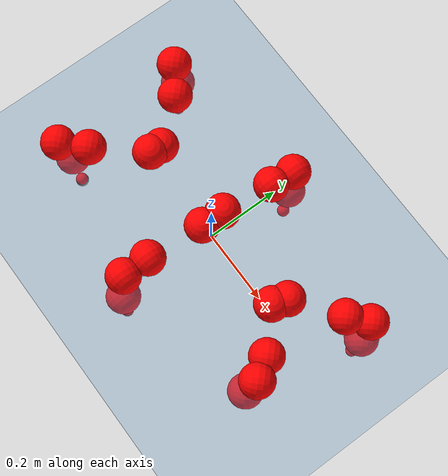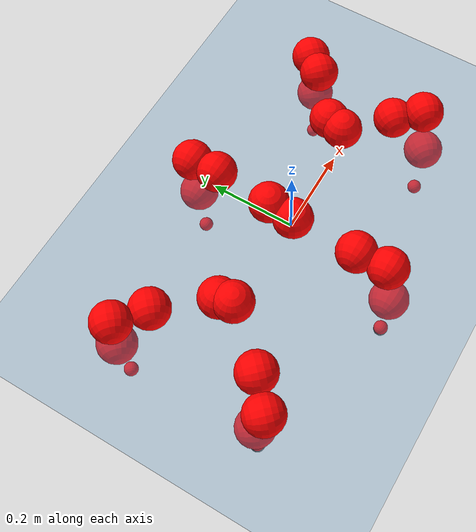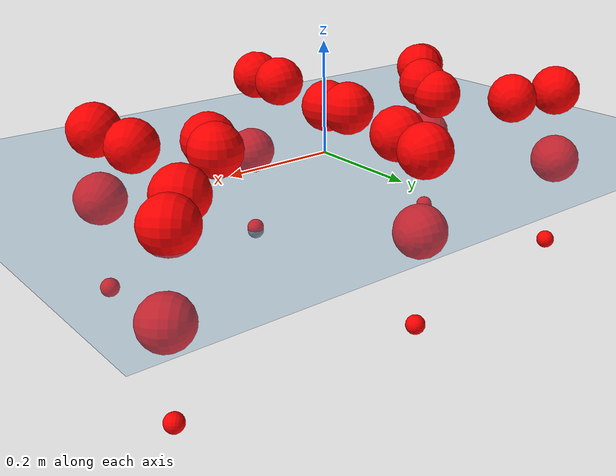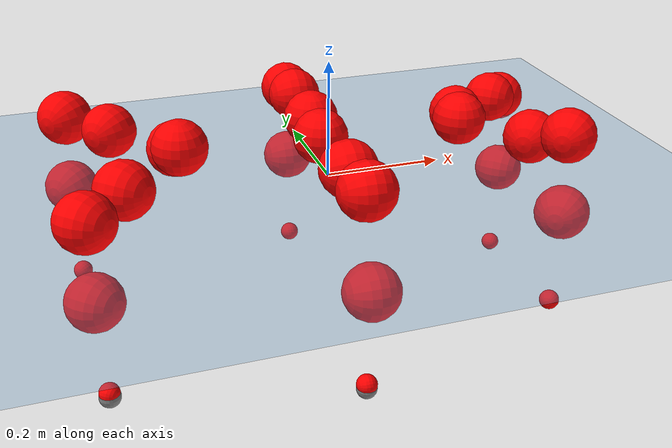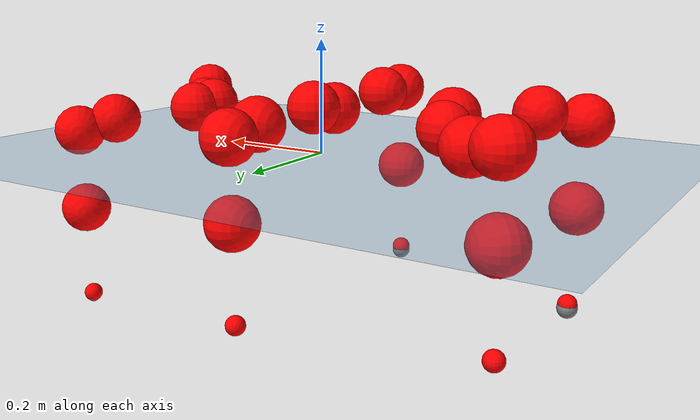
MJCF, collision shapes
<mujoco model="Golem">
  <compiler angle="radian" assetdir="assets" balanceinertia="true" inertiafromgeom="false"/>

  <option timestep="0.005" density="1.2" viscosity="2e-05"/>

  <size nkey="1"/>

  <visual>
    <quality shadowsize="8192"/>
    <map shadowclip="0.5"/>
  </visual>

  <default>
    <default class="/">
      <joint armature="0.01" damping="0.01" frictionloss="0.01"/>
      <geom contype="0" conaffinity="0" group="1" solref="-1000 -80"/>
      <site size="0.01 0.005 0.005" group="5"/>
      <general forcelimited="true" biastype="affine" gainprm="25" biasprm="0 -25 -0.5"/>
      <default class="visual">
        <geom type="mesh" group="2"/>
      </default>
      <default class="collision">
        <geom group="3"/>
      </default>
      <default class="foot">
        <geom size="0.01 0 0" condim="6" group="4" priority="1" solimp="0.015 1 0.01"/>
      </default>
      <default class="reward_collision_sphere">
        <geom group="5" rgba="1 0 0 1"/>
      </default>
    </default>
  </default>

  <asset>
    <texture type="skybox" colorspace="auto" name="//unnamed_texture_0" builtin="gradient" rgb1="0.95 0.95 0.95" rgb2="0.95 0.95 0.95" width="100" height="600"/>
    <texture type="2d" colorspace="auto" name="texplane" builtin="checker" rgb1="0.345 0.575 0.748" rgb2="0.345 0.575 0.748" markrgb="1 1 1" width="512" height="512"/>
    <material name="MatPlane" class="/" texture="texplane" texuniform="true" texrepeat="2 2" specular="0.9"/>
    <mesh name="body" class="/" file="body.stl" scale="0.001 0.001 0.001"/>
    <mesh name="coxa" class="/" file="coxa.stl" scale="0.001 0.001 0.001"/>
    <mesh name="femur" class="/" file="femur.stl" scale="0.001 0.001 0.001"/>
    <mesh name="tibia" class="/" file="tibia.stl" scale="0.001 0.001 0.001"/>
    <mesh name="tarsus" class="/" file="tarsus.stl" scale="0.001 0.001 0.001"/>
  </asset>

  <worldbody>
    <geom name="floor" class="/" size="100 100 0.125" type="plane" group="0" material="MatPlane"/>
    <light name="toplight_shadow" class="/" pos="0 0 5" dir="0.0990148 0.0990148 -0.990148" type="directional" ambient="0.04 0.04 0.04" diffuse="0.55 0.55 0.55" specular="0.12 0.12 0.12"/>
    <light name="toplight_fill" class="/" pos="0 0 5" dir="0.0990148 0.0990148 -0.990148" type="directional" castshadow="false" ambient="0.04 0.04 0.04" diffuse="0.3 0.3 0.3" specular="0.08 0.08 0.08"/>
    <body name="trunk" pos="0.000422134 0.00699361 0.013501" quat="0.99997 -0.00738154 0.00236214 -0.000292546">
      <inertial pos="-0.0105502 0.0105534 -0.0137797" quat="0.998881 -0.0315491 0.00324622 -0.035094" mass="7.53917" diaginertia="0.126666 0.00162668 0.0210148"/>
      <joint name="//unnamed_joint_0" type="free"/>
      <geom name="//unnamed_geom_1" class="/" pos="0 0 0.0745624" quat="1 0 0 0" type="mesh" rgba="0.9 0.9 0.9 1" mesh="body"/>
      <site name="imu" class="/" pos="0.249763 -0.0794704 0.0223177" size="0.0113878"/>
      <camera name="track" class="/" pos="0 -1.31782 0" quat="0.707107 0.707107 0 0" mode="trackcom"/>
      <camera name="ego_camera" class="/" pos="0.207012 0 0.116504" quat="-0.5 -0.5 0.5 0.5"/>
      <body name="coxa_RR" pos="-0.28283 -0.0493493 0.0723979" quat="0.381464 0.00478543 0.00826318 -0.924334">
        <inertial pos="-0.0146733 -0.00921711 0.012397" quat="0.998517 -0.0412175 -0.02872 -0.0209749" mass="0.260135" diaginertia="0.126114 0.00108347 0.0179239"/>
        <joint name="coxa_joint_RR" class="/" pos="0 0 0" axis="0.00847546 -0.0506147 -0.998682" range="-3.35477 3.32196" armature="0.00826436" damping="0.0481325" frictionloss="0.0056297"/>
        <geom name="//unnamed_geom_2" class="/" type="mesh" rgba="0.2 0.2 0.2 1" mesh="coxa"/>
        <geom name="//unnamed_geom_3" class="reward_collision_sphere" size="0.0455512" pos="-0.047772 0 0"/>
        <body name="femur_RR" pos="0.107328 0.0105224 -0.00207038" quat="0.498119 -0.494535 0.500658 0.506611">
          <inertial pos="-0.000979246 -0.0185991 -0.0120897" quat="0.997792 0.049995 -0.0242932 0.0363531" mass="0.33354" diaginertia="0.103836 0.00171148 0.0264405"/>
          <joint name="femur_joint_RR" class="/" pos="0 0 0" axis="-0.0335779 -0.00425328 -0.999427" range="-3.32828 3.32896" armature="0.00297326" damping="0" frictionloss="0.0107445"/>
          <geom name="//unnamed_geom_4" class="/" type="mesh" rgba="0.9 0.9 0.9 1" mesh="femur"/>
          <geom name="//unnamed_geom_5" class="reward_collision_sphere" size="0.0455512"/>
          <body name="tibia_RR" pos="0.0131845 -0.0816373 -0.00600403" quat="0.000110239 0.999997 -0.00223871 8.30897e-05">
            <inertial pos="0.00254123 -0.0175649 -0.00735638" quat="0.999993 -0.000696308 0.00323855 0.00143929" mass="0.367046" diaginertia="0.127892 0.00153362 0.0270521"/>
            <joint name="tibia_joint_RR" class="/" pos="0 0 0" axis="0.0499628 -0.0696292 0.996321" stiffness="0.0706985" range="-3.49257 2.98378" armature="0.0190948" damping="0.0637184" frictionloss="0.00029622"/>
            <geom name="//unnamed_geom_6" class="/" type="mesh" rgba="0.2 0.2 0.2 1" mesh="tibia"/>
            <geom name="//unnamed_geom_7" class="reward_collision_sphere" size="0.0455512"/>
            <body name="tarsus_RR" pos="0.146612 -0.0148601 0.0171662" quat="0.999982 0.000246593 0.00147743 -0.00587103">
              <inertial pos="0.0845222 0.00758067 -0.014198" quat="0.479507 0.529045 0.4619 0.526149" mass="0.353148" diaginertia="0.11284 0.00166737 0.0196542"/>
              <joint name="tarsus_joint_RR" class="/" pos="0 0 0" axis="0.0158079 -0.0655315 0.997725" range="-2.89214 3.25096" armature="0.0173452" damping="0" frictionloss="0.0077742"/>
              <geom name="//unnamed_geom_8" class="/" type="mesh" rgba="0.9 0.9 0.9 1" mesh="tarsus"/>
              <geom name="foot_1" class="foot" size="0.0180862" pos="0.178349 0 0" quat="0 -0.707107 0 0.707107"/>
              <geom name="//unnamed_geom_10" class="reward_collision_sphere" size="0.0455512"/>
              <geom name="//unnamed_geom_11" class="reward_collision_sphere" size="0.0170817" pos="0.171183 0 0"/>
              <site name="foot_1" class="foot" pos="0.178349 0 0" quat="0 -0.707107 0 0.707107" size="0.0113878"/>
            </body>
          </body>
        </body>
      </body>
      <body name="coxa_RM" pos="-0.0191245 -0.0706526 0.0661097" quat="0.705731 -0.00226819 0.0027176 -0.708472">
        <inertial pos="-0.00518377 -0.00202231 0.016058" quat="0.995591 -0.0390835 0.0727054 -0.0445551" mass="0.258458" diaginertia="0.0733561 0.000736921 0.0133178"/>
        <joint name="coxa_joint_RM" class="/" pos="0 0 0" axis="-0.0767188 -0.0488613 -0.995855" stiffness="0.0575929" range="-3.11276 3.38034" armature="0.0163846" damping="0" frictionloss="0.00362125"/>
        <geom name="//unnamed_geom_12" class="/" type="mesh" rgba="0.2 0.2 0.2 1" mesh="coxa"/>
        <geom name="//unnamed_geom_13" class="reward_collision_sphere" size="0.0455512" pos="-0.047772 0 0"/>
        <body name="femur_RM" pos="0.109493 -0.00772797 0.011251" quat="0.499048 -0.500359 0.501841 0.498745">
          <inertial pos="-0.00383976 -0.0145604 -0.00313873" quat="0.999396 0.0208652 -0.0195242 -0.0197556" mass="0.242475" diaginertia="0.119241 0.00126472 0.0238142"/>
          <joint name="femur_joint_RM" class="/" pos="0 0 0" axis="-0.016046 0.00981695 -0.999823" stiffness="0.0744956" range="-3.45088 2.90473" armature="0.0036648" damping="0" frictionloss="0.00182783"/>
          <geom name="//unnamed_geom_14" class="/" type="mesh" rgba="0.9 0.9 0.9 1" mesh="femur"/>
          <geom name="//unnamed_geom_15" class="reward_collision_sphere" size="0.0455512"/>
          <body name="tibia_RM" pos="0.00132066 -0.0736787 0.00159968" quat="-0.000621855 0.999996 -0.00275931 0.000788871">
            <inertial pos="-0.00514142 0.00270738 -0.0150001" quat="0.999292 0.0359474 0.00244902 0.0108207" mass="0.228976" diaginertia="0.106991 0.00127696 0.0244435"/>
            <joint name="tibia_joint_RM" class="/" pos="0 0 0" axis="-0.0650047 0.0583258 0.996179" range="-3.35274 2.85942" armature="0.021499" damping="0" frictionloss="0.00142774"/>
            <geom name="//unnamed_geom_16" class="/" type="mesh" rgba="0.2 0.2 0.2 1" mesh="tibia"/>
            <geom name="//unnamed_geom_17" class="reward_collision_sphere" size="0.0455512"/>
            <body name="tarsus_RM" pos="0.159525 0.0159988 -0.00785673" quat="0.999974 0.00453319 -0.00159183 -0.00530694">
              <inertial pos="0.0929541 0.00616224 -0.00359551" quat="0.488146 0.50284 0.495214 0.513448" mass="0.187978" diaginertia="0.0850623 0.000976975 0.0172716"/>
              <joint name="tarsus_joint_RM" class="/" pos="0 0 0" axis="-0.0521851 0.00164911 0.998636" range="-3.3407 3.29299" armature="0.0177775" damping="0" frictionloss="0.00679074"/>
              <geom name="//unnamed_geom_18" class="/" type="mesh" rgba="0.9 0.9 0.9 1" mesh="tarsus"/>
              <geom name="foot_2" class="foot" size="0.0169522" pos="0.178349 0 0" quat="0 -0.707107 0 0.707107"/>
              <geom name="//unnamed_geom_20" class="reward_collision_sphere" size="0.0455512"/>
              <geom name="//unnamed_geom_21" class="reward_collision_sphere" size="0.0170817" pos="0.171183 0 0"/>
              <site name="foot_2" class="foot" pos="0.178349 0 0" quat="0 -0.707107 0 0.707107" size="0.0113878"/>
            </body>
          </body>
        </body>
      </body>
      <body name="coxa_RF" pos="0.272801 -0.0370108 0.0594418" quat="0.923865 -0.000230982 2.28944e-05 -0.382719">
        <inertial pos="0.0178506 -0.00545234 0.0149177" quat="0.99782 -0.014518 -0.0634222 0.0110554" mass="0.2738" diaginertia="0.0797369 0.000861143 0.0175133"/>
        <joint name="coxa_joint_RF" class="/" pos="0 0 0" axis="-0.0044786 -0.0398142 -0.999197" stiffness="0.0763094" range="-3.24443 3.40537" armature="0.0150769" damping="0" frictionloss="0.00173831"/>
        <geom name="//unnamed_geom_22" class="/" type="mesh" rgba="0.2 0.2 0.2 1" mesh="coxa"/>
        <geom name="//unnamed_geom_23" class="reward_collision_sphere" size="0.0455512" pos="-0.047772 0 0"/>
        <body name="femur_RF" pos="0.0772327 0.0063233 -0.012468" quat="0.493954 -0.503307 0.503479 0.499198">
          <inertial pos="-0.00666857 -0.00400829 0.0081982" quat="0.998124 -0.00690513 -0.0552378 0.0254752" mass="0.280989" diaginertia="0.11376 0.00155914 0.0248211"/>
          <joint name="femur_joint_RF" class="/" pos="0 0 0" axis="0.0483698 -0.00668385 -0.998807" range="-3.36475 3.09272" armature="0.00730785" damping="0.0270316" frictionloss="0.00785845"/>
          <geom name="//unnamed_geom_24" class="/" type="mesh" rgba="0.9 0.9 0.9 1" mesh="femur"/>
          <geom name="//unnamed_geom_25" class="reward_collision_sphere" size="0.0455512"/>
          <body name="tibia_RF" pos="-0.0197039 -0.0653154 -0.015917" quat="-0.000307897 0.999987 -0.00383239 -0.0033924">
            <inertial pos="0.00155219 0.0172683 0.0154323" quat="0.996477 -0.0224606 0.0368273 -0.0719276" mass="0.316509" diaginertia="0.142925 0.001691 0.0205132"/>
            <joint name="tibia_joint_RF" class="/" pos="0 0 0" axis="0.0631693 0.054559 0.99651" stiffness="0.0951842" range="-2.90598 3.04032" armature="0.00855481" damping="0.0437893" frictionloss="0.0187096"/>
            <geom name="//unnamed_geom_26" class="/" type="mesh" rgba="0.2 0.2 0.2 1" mesh="tibia"/>
            <geom name="//unnamed_geom_27" class="reward_collision_sphere" size="0.0455512"/>
            <body name="tarsus_RF" pos="0.129037 0.00931901 0.0183132" quat="1 0.000153938 0.000260717 3.05472e-05">
              <inertial pos="0.0874433 -0.00707371 0.00580805" quat="0.512475 0.49793 0.460241 0.526891" mass="0.31665" diaginertia="0.133462 0.00170014 0.0224464"/>
              <joint name="tarsus_joint_RF" class="/" pos="0 0 0" axis="0.0868354 -0.0365704 0.995551" range="-3.00616 3.29505" armature="0.0173618" damping="0.00885712" frictionloss="0.00426457"/>
              <geom name="//unnamed_geom_28" class="/" type="mesh" rgba="0.9 0.9 0.9 1" mesh="tarsus"/>
              <geom name="foot_3" class="foot" size="0.00646253" pos="0.178349 0 0" quat="0 -0.707107 0 0.707107"/>
              <geom name="//unnamed_geom_30" class="reward_collision_sphere" size="0.0455512"/>
              <geom name="//unnamed_geom_31" class="reward_collision_sphere" size="0.0170817" pos="0.171183 0 0"/>
              <site name="foot_3" class="foot" pos="0.178349 0 0" quat="0 -0.707107 0 0.707107" size="0.0113878"/>
            </body>
          </body>
        </body>
      </body>
      <body name="coxa_LR" pos="-0.285009 0.0531807 0.0568199" quat="0.384485 -0.00731378 0.00310709 0.923097">
        <inertial pos="0.0117102 -0.0155233 0.0162459" quat="0.999276 -0.0357042 -0.00415819 0.0124732" mass="0.284674" diaginertia="0.103776 0.00132215 0.0194729"/>
        <joint name="coxa_joint_LR" class="/" pos="0 0 0" axis="-0.0107227 -0.0737693 -0.997218" stiffness="0.00449123" range="-2.91521 2.79734" armature="0.0131159" damping="0" frictionloss="0.00320376"/>
        <geom name="//unnamed_geom_32" class="/" type="mesh" rgba="0.2 0.2 0.2 1" mesh="coxa"/>
        <geom name="//unnamed_geom_33" class="reward_collision_sphere" size="0.0455512" pos="-0.047772 0 0"/>
        <body name="femur_LR" pos="0.0940138 -0.0121583 0.00159027" quat="0.497589 -0.498922 0.499076 0.504386">
          <inertial pos="-0.00582209 -0.0142733 -0.00938798" quat="0.995985 -0.0449784 0.0384633 -0.0671682" mass="0.37162" diaginertia="0.0919638 0.00152801 0.0276749"/>
          <joint name="femur_joint_LR" class="/" pos="0 0 0" axis="-0.093302 0.0341637 0.995052" stiffness="0.00257772" range="-2.90894 2.93329" armature="0.00124674" damping="0" frictionloss="0.00918161"/>
          <geom name="//unnamed_geom_34" class="/" type="mesh" rgba="0.9 0.9 0.9 1" mesh="femur"/>
          <geom name="//unnamed_geom_35" class="reward_collision_sphere" size="0.0455512"/>
          <body name="tibia_LR" pos="-0.0158054 -0.0797708 0.0147239" quat="-7.32783e-06 0.999988 -0.00466321 0.00157656">
            <inertial pos="0.0119356 -0.00976383 -0.0152966" quat="0.997526 -0.0561532 0.0422119 -0.00255863" mass="0.209725" diaginertia="0.0834297 0.000960064 0.0218827"/>
            <joint name="tibia_joint_LR" class="/" pos="0 0 0" axis="-0.00858223 0.0236399 -0.999684" range="-3.49869 2.84979" armature="0.0208798" damping="0" frictionloss="0.0115233"/>
            <geom name="//unnamed_geom_36" class="/" type="mesh" rgba="0.2 0.2 0.2 1" mesh="tibia"/>
            <geom name="//unnamed_geom_37" class="reward_collision_sphere" size="0.0455512"/>
            <body name="tarsus_LR" pos="0.133106 0.0121368 0.00650134" quat="1 -1.18977e-05 -4.3879e-05 4.3374e-05">
              <inertial pos="0.0999463 0.0165116 -0.00746857" quat="0.501301 0.495965 0.498066 0.504625" mass="0.402264" diaginertia="0.115643 0.00105408 0.0203876"/>
              <joint name="tarsus_joint_LR" class="/" pos="0 0 0" axis="-0.00125677 0.0057396 -0.999983" range="-2.98542 2.87819" armature="0.0108786" damping="0.057918" frictionloss="0.0186988"/>
              <geom name="//unnamed_geom_38" class="/" type="mesh" rgba="0.9 0.9 0.9 1" mesh="tarsus"/>
              <geom name="foot_4" class="foot" size="0.00589488" pos="0.178349 0 0" quat="0.707107 0 -0.707107 0"/>
              <geom name="//unnamed_geom_40" class="reward_collision_sphere" size="0.0455512"/>
              <geom name="//unnamed_geom_41" class="reward_collision_sphere" size="0.0170817" pos="0.171183 0 0"/>
              <site name="foot_4" class="foot" pos="0.178349 0 0" quat="0.707107 0 -0.707107 0" size="0.0113878"/>
            </body>
          </body>
        </body>
      </body>
      <body name="coxa_LM" pos="-0.0156135 0.0861365 0.0753895" quat="0.70879 -0.00348418 -0.000497758 0.705411">
        <inertial pos="0.000426689 -0.00444673 0.0176927" quat="0.999331 -0.0233705 -0.0200172 -0.0197878" mass="0.297368" diaginertia="0.0782374 0.00115033 0.0196635"/>
        <joint name="coxa_joint_LM" class="/" pos="0 0 0" axis="0.0561756 0.0253783 -0.998098" range="-2.99561 3.22138" armature="0.00543745" damping="0.0818336" frictionloss="0.0113435"/>
        <geom name="//unnamed_geom_42" class="/" type="mesh" rgba="0.2 0.2 0.2 1" mesh="coxa"/>
        <geom name="//unnamed_geom_43" class="reward_collision_sphere" size="0.0455512" pos="-0.047772 0 0"/>
        <body name="femur_LM" pos="0.0930134 -0.0122091 -0.00786761" quat="0.501685 -0.500514 0.498652 0.499144">
          <inertial pos="0.0145447 -0.00047722 0.0191658" quat="0.997286 0.0144338 -0.0648984 0.0316343" mass="0.306916" diaginertia="0.117854 0.00130484 0.0231781"/>
          <joint name="femur_joint_LM" class="/" pos="0 0 0" axis="0.0582892 -0.0195561 0.998108" range="-3.30787 3.51415" armature="0.0181473" damping="0" frictionloss="0.0204632"/>
          <geom name="//unnamed_geom_44" class="/" type="mesh" rgba="0.9 0.9 0.9 1" mesh="femur"/>
          <geom name="//unnamed_geom_45" class="reward_collision_sphere" size="0.0455512"/>
          <body name="tibia_LM" pos="0.00992893 -0.0676955 -0.0036305" quat="-0.0040509 0.999983 0.0030894 -0.00298826">
            <inertial pos="-0.0110807 -0.00329581 0.00257231" quat="0.999374 0.0190448 -0.0298201 0.000761342" mass="0.310321" diaginertia="0.127386 0.00159808 0.0275658"/>
            <joint name="tibia_joint_LM" class="/" pos="0 0 0" axis="-0.0273541 -0.0747222 -0.996829" range="-3.45198 3.37936" armature="0.00069788" damping="0.0509446" frictionloss="0.00255966"/>
            <geom name="//unnamed_geom_46" class="/" type="mesh" rgba="0.2 0.2 0.2 1" mesh="tibia"/>
            <geom name="//unnamed_geom_47" class="reward_collision_sphere" size="0.0455512"/>
            <body name="tarsus_LM" pos="0.137889 -0.00188364 -0.000261027" quat="0.999999 0.000110544 -0.000160667 0.0012066">
              <inertial pos="0.106858 0.00815875 -0.00328198" quat="0.44895 0.524049 0.518931 0.504507" mass="0.384782" diaginertia="0.140995 0.00192545 0.0300011"/>
              <joint name="tarsus_joint_LM" class="/" pos="0 0 0" axis="-0.0370004 0.0519013 -0.997967" range="-3.1413 3.18172" armature="0.0163769" damping="0" frictionloss="0.000801785"/>
              <geom name="//unnamed_geom_48" class="/" type="mesh" rgba="0.9 0.9 0.9 1" mesh="tarsus"/>
              <geom name="foot_5" class="foot" size="0.0060247" pos="0.178349 0 0" quat="0.707107 0 -0.707107 0"/>
              <geom name="//unnamed_geom_50" class="reward_collision_sphere" size="0.0455512"/>
              <geom name="//unnamed_geom_51" class="reward_collision_sphere" size="0.0170817" pos="0.171183 0 0"/>
              <site name="foot_5" class="foot" pos="0.178349 0 0" quat="0.707107 0 -0.707107 0" size="0.0113878"/>
            </body>
          </body>
        </body>
      </body>
      <body name="coxa_LF" pos="0.28545 0.0704211 0.0552786" quat="0.924958 -0.00296988 0.00234518 0.38005">
        <inertial pos="0.0175334 0.0192721 0.0140492" quat="0.998969 0.00104651 0.0384169 -0.0241772" mass="0.368561" diaginertia="0.121415 0.00183269 0.0207787"/>
        <joint name="coxa_joint_LF" class="/" pos="0 0 0" axis="0.08576 0.0183969 -0.996146" stiffness="0.0213058" range="-2.88946 3.1183" armature="0.00648137" damping="0" frictionloss="0.0198444"/>
        <geom name="//unnamed_geom_52" class="/" type="mesh" rgba="0.2 0.2 0.2 1" mesh="coxa"/>
        <geom name="//unnamed_geom_53" class="reward_collision_sphere" size="0.0455512" pos="-0.047772 0 0"/>
        <body name="femur_LF" pos="0.0982855 -0.0169793 -0.0164724" quat="0.495217 -0.502945 0.497757 0.504028">
          <inertial pos="-0.00181946 0.0127765 -0.00933357" quat="0.999975 0.00101137 0.00299969 -0.00628499" mass="0.314895" diaginertia="0.151483 0.00149905 0.0256785"/>
          <joint name="femur_joint_LF" class="/" pos="0 0 0" axis="0.00368369 0.0856838 0.996316" range="-2.90987 2.83663" armature="0.00679491" damping="0.0145414" frictionloss="0.0135742"/>
          <geom name="//unnamed_geom_54" class="/" type="mesh" rgba="0.9 0.9 0.9 1" mesh="femur"/>
          <geom name="//unnamed_geom_55" class="reward_collision_sphere" size="0.0455512"/>
          <body name="tibia_LF" pos="0.0181946 -0.0659938 0.000263674" quat="0.00370384 0.999981 -0.0016882 0.00452031">
            <inertial pos="-0.0130854 -0.016974 0.0120704" quat="0.999657 0.00276399 -0.00114152 0.0260178" mass="0.272201" diaginertia="0.132782 0.0014459 0.0275084"/>
            <joint name="tibia_joint_LF" class="/" pos="0 0 0" axis="0.0616541 -0.0282676 -0.997697" stiffness="0.0862912" range="-3.24389 3.443" armature="0.0166282" damping="0.0685188" frictionloss="0.00637309"/>
            <geom name="//unnamed_geom_56" class="/" type="mesh" rgba="0.2 0.2 0.2 1" mesh="tibia"/>
            <geom name="//unnamed_geom_57" class="reward_collision_sphere" size="0.0455512"/>
            <body name="tarsus_LF" pos="0.151732 0.000910175 0.014993" quat="0.999999 0.00139745 -0.000871175 0.000350773">
              <inertial pos="0.115101 -0.00810547 0.00878222" quat="0.455408 0.444443 0.52979 0.560711" mass="0.343832" diaginertia="0.0982872 0.00131005 0.023689"/>
              <joint name="tarsus_joint_LF" class="/" pos="0 0 0" axis="-0.0826787 -0.0555547 -0.995027" range="-3.3721 3.42524" armature="0.0111151" damping="0.0826596" frictionloss="0.0178427"/>
              <geom name="//unnamed_geom_58" class="/" type="mesh" rgba="0.9 0.9 0.9 1" mesh="tarsus"/>
              <geom name="foot_6" class="foot" size="0.0115101" pos="0.178349 0 0" quat="0.707107 0 -0.707107 0"/>
              <geom name="//unnamed_geom_60" class="reward_collision_sphere" size="0.0455512"/>
              <geom name="//unnamed_geom_61" class="reward_collision_sphere" size="0.0170817" pos="0.171183 0 0"/>
              <site name="foot_6" class="foot" pos="0.178349 0 0" quat="0.707107 0 -0.707107 0" size="0.0113878"/>
            </body>
          </body>
        </body>
      </body>
    </body>
  </worldbody>

  <contact>
    <pair class="/" geom1="floor" geom2="foot_1" name="//unnamed_contact_0"/>
    <pair class="/" geom1="floor" geom2="foot_2" name="//unnamed_contact_1"/>
    <pair class="/" geom1="floor" geom2="foot_3" name="//unnamed_contact_2"/>
    <pair class="/" geom1="floor" geom2="foot_4" name="//unnamed_contact_3"/>
    <pair class="/" geom1="floor" geom2="foot_5" name="//unnamed_contact_4"/>
    <pair class="/" geom1="floor" geom2="foot_6" name="//unnamed_contact_5"/>
  </contact>

  <actuator>
    <general name="coxa_joint_RR" class="/" joint="coxa_joint_RR" forcerange="-8.84823 8.84823" gainprm="25.162" biasprm="0 -25.162 -0.426171"/>
    <general name="femur_joint_RR" class="/" joint="femur_joint_RR" forcerange="-5.59523 5.59523" gainprm="25.162" biasprm="0 -25.162 -0.426171"/>
    <general name="tibia_joint_RR" class="/" joint="tibia_joint_RR" forcerange="-9.16648 9.16648" gainprm="25.162" biasprm="0 -25.162 -0.426171"/>
    <general name="tarsus_joint_RR" class="/" joint="tarsus_joint_RR" forcerange="-3.4792 3.4792" gainprm="25.162" biasprm="0 -25.162 -0.426171"/>
    <general name="coxa_joint_RM" class="/" joint="coxa_joint_RM" forcerange="-11.5512 11.5512" gainprm="25.162" biasprm="0 -25.162 -0.426171"/>
    <general name="femur_joint_RM" class="/" joint="femur_joint_RM" forcerange="-3.44614 3.44614" gainprm="25.162" biasprm="0 -25.162 -0.426171"/>
    <general name="tibia_joint_RM" class="/" joint="tibia_joint_RM" forcerange="-5.48887 5.48887" gainprm="25.162" biasprm="0 -25.162 -0.426171"/>
    <general name="tarsus_joint_RM" class="/" joint="tarsus_joint_RM" forcerange="-4.94203 4.94203" gainprm="25.162" biasprm="0 -25.162 -0.426171"/>
    <general name="coxa_joint_RF" class="/" joint="coxa_joint_RF" forcerange="-13.1366 13.1366" gainprm="25.162" biasprm="0 -25.162 -0.426171"/>
    <general name="femur_joint_RF" class="/" joint="femur_joint_RF" forcerange="-6.27674 6.27674" gainprm="25.162" biasprm="0 -25.162 -0.426171"/>
    <general name="tibia_joint_RF" class="/" joint="tibia_joint_RF" forcerange="-5.24745 5.24745" gainprm="25.162" biasprm="0 -25.162 -0.426171"/>
    <general name="tarsus_joint_RF" class="/" joint="tarsus_joint_RF" forcerange="-6.14987 6.14987" gainprm="25.162" biasprm="0 -25.162 -0.426171"/>
    <general name="coxa_joint_LR" class="/" joint="coxa_joint_LR" forcerange="-7.37005 7.37005" gainprm="25.162" biasprm="0 -25.162 -0.426171"/>
    <general name="femur_joint_LR" class="/" joint="femur_joint_LR" forcerange="-8.7491 8.7491" gainprm="25.162" biasprm="0 -25.162 -0.426171"/>
    <general name="tibia_joint_LR" class="/" joint="tibia_joint_LR" forcerange="-10.1054 10.1054" gainprm="25.162" biasprm="0 -25.162 -0.426171"/>
    <general name="tarsus_joint_LR" class="/" joint="tarsus_joint_LR" forcerange="-6.86452 6.86452" gainprm="25.162" biasprm="0 -25.162 -0.426171"/>
    <general name="coxa_joint_LM" class="/" joint="coxa_joint_LM" forcerange="-10.7545 10.7545" gainprm="25.162" biasprm="0 -25.162 -0.426171"/>
    <general name="femur_joint_LM" class="/" joint="femur_joint_LM" forcerange="-10.6193 10.6193" gainprm="25.162" biasprm="0 -25.162 -0.426171"/>
    <general name="tibia_joint_LM" class="/" joint="tibia_joint_LM" forcerange="-7.98945 7.98945" gainprm="25.162" biasprm="0 -25.162 -0.426171"/>
    <general name="tarsus_joint_LM" class="/" joint="tarsus_joint_LM" forcerange="-5.01633 5.01633" gainprm="25.162" biasprm="0 -25.162 -0.426171"/>
    <general name="coxa_joint_LF" class="/" joint="coxa_joint_LF" forcerange="-12.0684 12.0684" gainprm="25.162" biasprm="0 -25.162 -0.426171"/>
    <general name="femur_joint_LF" class="/" joint="femur_joint_LF" forcerange="-7.74199 7.74199" gainprm="25.162" biasprm="0 -25.162 -0.426171"/>
    <general name="tibia_joint_LF" class="/" joint="tibia_joint_LF" forcerange="-7.45003 7.45003" gainprm="25.162" biasprm="0 -25.162 -0.426171"/>
    <general name="tarsus_joint_LF" class="/" joint="tarsus_joint_LF" forcerange="-7.60665 7.60665" gainprm="25.162" biasprm="0 -25.162 -0.426171"/>
  </actuator>

  <sensor>
    <gyro site="imu" name="imu_angular_velocity"/>
    <velocimeter site="imu" name="imu_linear_velocity"/>
    <framelinvel objtype="site" objname="foot_1" name="foot_1_global_linear_velocity"/>
    <framelinvel objtype="site" objname="foot_2" name="foot_2_global_linear_velocity"/>
    <framelinvel objtype="site" objname="foot_3" name="foot_3_global_linear_velocity"/>
    <framelinvel objtype="site" objname="foot_4" name="foot_4_global_linear_velocity"/>
    <framelinvel objtype="site" objname="foot_5" name="foot_5_global_linear_velocity"/>
    <framelinvel objtype="site" objname="foot_6" name="foot_6_global_linear_velocity"/>
  </sensor>

  <keyframe>
    <key name="home" qpos="0 0 0.1457 1 0 0 0 0 0 0 0 0 0 0 0 0 0 0 0 0 0 0 0 0 0 0 0 0 0 0 0"/>
  </keyframe>
</mujoco>
